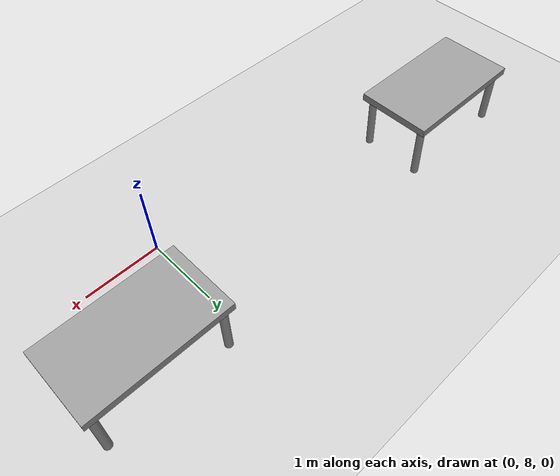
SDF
<sdf version="1.6">
 <world name="default">
  <model name="ground_plane">
   <pose>0 10 0 0 -0 0</pose>
   <static>1</static>
   <link name="link">
    <collision name="collision">
     <geometry><plane><normal>0 0 1</normal><size>100 100</size></plane></geometry>
     <surface><friction><ode><mu>100</mu><mu2>50</mu2></ode></friction></surface>
    </collision>
    <visual name="visual">
     <cast_shadows>0</cast_shadows>
     <geometry><plane><normal>0 0 1</normal><size>100 100</size></plane></geometry>
     <material>
      <script><uri>file://media/materials/scripts/gazebo.material</uri><name>Gazebo/Grey</name></script>
     </material>
    </visual>
   </link>
  </model>
  <model name="table">
   <link name="link_0">
    <pose>0 0 0.34 0 -0 0</pose>
    <inertial>
     <mass>1</mass>
     <inertia>
      <ixx>0.166667</ixx>
      <ixy>0</ixy>
      <ixz>0</ixz>
      <iyy>0.166667</iyy>
      <iyz>0</iyz>
      <izz>0.166667</izz>
     </inertia>
    </inertial>
    <visual name="visual">
     <geometry><box><size>1.75 1 0.1</size></box></geometry>
     <material>
      <lighting>1</lighting>
      <script><uri>file://media/materials/scripts/gazebo.material</uri><name>Gazebo/Grey</name></script>
      <ambient>0.3 0.3 0.3 1</ambient>
      <diffuse>0.7 0.7 0.7 1</diffuse>
      <specular>0.01 0.01 0.01 1</specular>
      <emissive>0 0 0 1</emissive>
      <shader type="vertex"><normal_map>__default__</normal_map></shader>
     </material>
    </visual>
    <collision name="collision">
     <geometry><box><size>1.75 1 0.1</size></box></geometry>
     <surface>
      <friction>
       <ode><mu>1</mu><mu2>1</mu2><fdir1>0 0 0</fdir1><slip1>0</slip1><slip2>0</slip2></ode>
       <torsional>
        <coefficient>1</coefficient>
        <patch_radius>0</patch_radius>
        <surface_radius>0</surface_radius>
        <use_patch_radius>1</use_patch_radius>
        <ode><slip>0</slip></ode>
       </torsional>
      </friction>
      <bounce><restitution_coefficient>0</restitution_coefficient><threshold>1e+06</threshold></bounce>
      <contact>
       <collide_without_contact>0</collide_without_contact>
       <collide_without_contact_bitmask>1</collide_without_contact_bitmask>
       <collide_bitmask>1</collide_bitmask>
       <ode>
        <soft_cfm>0</soft_cfm>
        <soft_erp>0.2</soft_erp>
        <kp>1e+13</kp>
        <kd>1</kd>
        <max_vel>0.01</max_vel>
        <min_depth>0</min_depth>
       </ode>
       <bullet>
        <split_impulse>1</split_impulse>
        <split_impulse_penetration_threshold>-0.01</split_impulse_penetration_threshold>
        <soft_cfm>0</soft_cfm>
        <soft_erp>0.2</soft_erp>
        <kp>1e+13</kp>
        <kd>1</kd>
       </bullet>
      </contact>
     </surface>
    </collision>
   </link>
   <link name="link_1">
    <pose>0.775 0.4 -0.085 0 -0 0</pose>
    <inertial>
     <mass>1</mass>
     <inertia><ixx>0.145833</ixx><ixy>0</ixy><ixz>0</ixz><iyy>0.145833</iyy><iyz>0</iyz><izz>0.125</izz></inertia>
    </inertial>
    <visual name="visual">
     <geometry><cylinder><radius>0.05</radius><length>0.75</length></cylinder></geometry>
     <material>
      <lighting>1</lighting>
      <script><uri>file://media/materials/scripts/gazebo.material</uri><name>Gazebo/Grey</name></script>
      <ambient>0.3 0.3 0.3 1</ambient>
      <diffuse>0.7 0.7 0.7 1</diffuse>
      <specular>0.01 0.01 0.01 1</specular>
      <emissive>0 0 0 1</emissive>
      <shader type="vertex"><normal_map>__default__</normal_map></shader>
     </material>
    </visual>
    <collision name="collision">
     <geometry><cylinder><radius>0.05</radius><length>0.75</length></cylinder></geometry>
     <surface>
      <friction>
       <ode><mu>1</mu><mu2>1</mu2><fdir1>0 0 0</fdir1><slip1>0</slip1><slip2>0</slip2></ode>
       <torsional>
        <coefficient>1</coefficient>
        <patch_radius>0</patch_radius>
        <surface_radius>0</surface_radius>
        <use_patch_radius>1</use_patch_radius>
        <ode><slip>0</slip></ode>
       </torsional>
      </friction>
      <bounce><restitution_coefficient>0</restitution_coefficient><threshold>1e+06</threshold></bounce>
      <contact>
       <collide_without_contact>0</collide_without_contact>
       <collide_without_contact_bitmask>1</collide_without_contact_bitmask>
       <collide_bitmask>1</collide_bitmask>
       <ode>
        <soft_cfm>0</soft_cfm>
        <soft_erp>0.2</soft_erp>
        <kp>1e+13</kp>
        <kd>1</kd>
        <max_vel>0.01</max_vel>
        <min_depth>0</min_depth>
       </ode>
       <bullet>
        <split_impulse>1</split_impulse>
        <split_impulse_penetration_threshold>-0.01</split_impulse_penetration_threshold>
        <soft_cfm>0</soft_cfm>
        <soft_erp>0.2</soft_erp>
        <kp>1e+13</kp>
        <kd>1</kd>
       </bullet>
      </contact>
     </surface>
    </collision>
   </link>
   <link name="link_1_clone">
    <pose>-0.775 -0.4 -0.085 0 -0 0</pose>
    <inertial>
     <mass>1</mass>
     <inertia><ixx>0.145833</ixx><ixy>0</ixy><ixz>0</ixz><iyy>0.145833</iyy><iyz>0</iyz><izz>0.125</izz></inertia>
    </inertial>
    <visual name="visual">
     <geometry><cylinder><radius>0.05</radius><length>0.75</length></cylinder></geometry>
     <material>
      <lighting>1</lighting>
      <script><uri>file://media/materials/scripts/gazebo.material</uri><name>Gazebo/Grey</name></script>
      <ambient>0.3 0.3 0.3 1</ambient>
      <diffuse>0.7 0.7 0.7 1</diffuse>
      <specular>0.01 0.01 0.01 1</specular>
      <emissive>0 0 0 1</emissive>
      <shader type="vertex"><normal_map>__default__</normal_map></shader>
     </material>
    </visual>
    <collision name="collision">
     <geometry><cylinder><radius>0.05</radius><length>0.75</length></cylinder></geometry>
     <surface>
      <friction>
       <ode><mu>1</mu><mu2>1</mu2><fdir1>0 0 0</fdir1><slip1>0</slip1><slip2>0</slip2></ode>
       <torsional>
        <coefficient>1</coefficient>
        <patch_radius>0</patch_radius>
        <surface_radius>0</surface_radius>
        <use_patch_radius>1</use_patch_radius>
        <ode><slip>0</slip></ode>
       </torsional>
      </friction>
      <bounce><restitution_coefficient>0</restitution_coefficient><threshold>1e+06</threshold></bounce>
      <contact>
       <collide_without_contact>0</collide_without_contact>
       <collide_without_contact_bitmask>1</collide_without_contact_bitmask>
       <collide_bitmask>1</collide_bitmask>
       <ode>
        <soft_cfm>0</soft_cfm>
        <soft_erp>0.2</soft_erp>
        <kp>1e+13</kp>
        <kd>1</kd>
        <max_vel>0.01</max_vel>
        <min_depth>0</min_depth>
       </ode>
       <bullet>
        <split_impulse>1</split_impulse>
        <split_impulse_penetration_threshold>-0.01</split_impulse_penetration_threshold>
        <soft_cfm>0</soft_cfm>
        <soft_erp>0.2</soft_erp>
        <kp>1e+13</kp>
        <kd>1</kd>
       </bullet>
      </contact>
     </surface>
    </collision>
   </link>
   <link name="link_1_clone_0">
    <pose>0.775 -0.4 -0.085 0 -0 0</pose>
    <inertial>
     <mass>1</mass>
     <inertia><ixx>0.145833</ixx><ixy>0</ixy><ixz>0</ixz><iyy>0.145833</iyy><iyz>0</iyz><izz>0.125</izz></inertia>
    </inertial>
    <visual name="visual">
     <geometry><cylinder><radius>0.05</radius><length>0.75</length></cylinder></geometry>
     <material>
      <lighting>1</lighting>
      <script><uri>file://media/materials/scripts/gazebo.material</uri><name>Gazebo/Grey</name></script>
      <ambient>0.3 0.3 0.3 1</ambient>
      <diffuse>0.7 0.7 0.7 1</diffuse>
      <specular>0.01 0.01 0.01 1</specular>
      <emissive>0 0 0 1</emissive>
      <shader type="vertex"><normal_map>__default__</normal_map></shader>
     </material>
    </visual>
    <collision name="collision">
     <geometry><cylinder><radius>0.05</radius><length>0.75</length></cylinder></geometry>
     <surface>
      <friction>
       <ode><mu>1</mu><mu2>1</mu2><fdir1>0 0 0</fdir1><slip1>0</slip1><slip2>0</slip2></ode>
       <torsional>
        <coefficient>1</coefficient>
        <patch_radius>0</patch_radius>
        <surface_radius>0</surface_radius>
        <use_patch_radius>1</use_patch_radius>
        <ode><slip>0</slip></ode>
       </torsional>
      </friction>
      <bounce><restitution_coefficient>0</restitution_coefficient><threshold>1e+06</threshold></bounce>
      <contact>
       <collide_without_contact>0</collide_without_contact>
       <collide_without_contact_bitmask>1</collide_without_contact_bitmask>
       <collide_bitmask>1</collide_bitmask>
       <ode>
        <soft_cfm>0</soft_cfm>
        <soft_erp>0.2</soft_erp>
        <kp>1e+13</kp>
        <kd>1</kd>
        <max_vel>0.01</max_vel>
        <min_depth>0</min_depth>
       </ode>
       <bullet>
        <split_impulse>1</split_impulse>
        <split_impulse_penetration_threshold>-0.01</split_impulse_penetration_threshold>
        <soft_cfm>0</soft_cfm>
        <soft_erp>0.2</soft_erp>
        <kp>1e+13</kp>
        <kd>1</kd>
       </bullet>
      </contact>
     </surface>
    </collision>
   </link>
   <link name="link_1_clone_1">
    <pose>-0.775 0.4 -0.085 0 -0 0</pose>
    <inertial>
     <mass>1</mass>
     <inertia><ixx>0.145833</ixx><ixy>0</ixy><ixz>0</ixz><iyy>0.145833</iyy><iyz>0</iyz><izz>0.125</izz></inertia>
    </inertial>
    <visual name="visual">
     <geometry><cylinder><radius>0.05</radius><length>0.75</length></cylinder></geometry>
     <material>
      <lighting>1</lighting>
      <script><uri>file://media/materials/scripts/gazebo.material</uri><name>Gazebo/Grey</name></script>
      <ambient>0.3 0.3 0.3 1</ambient>
      <diffuse>0.7 0.7 0.7 1</diffuse>
      <specular>0.01 0.01 0.01 1</specular>
      <emissive>0 0 0 1</emissive>
      <shader type="vertex"><normal_map>__default__</normal_map></shader>
     </material>
    </visual>
    <collision name="collision">
     <geometry><cylinder><radius>0.05</radius><length>0.75</length></cylinder></geometry>
     <surface>
      <friction>
       <ode><mu>1</mu><mu2>1</mu2><fdir1>0 0 0</fdir1><slip1>0</slip1><slip2>0</slip2></ode>
       <torsional>
        <coefficient>1</coefficient>
        <patch_radius>0</patch_radius>
        <surface_radius>0</surface_radius>
        <use_patch_radius>1</use_patch_radius>
        <ode><slip>0</slip></ode>
       </torsional>
      </friction>
      <bounce><restitution_coefficient>0</restitution_coefficient><threshold>1e+06</threshold></bounce>
      <contact>
       <collide_without_contact>0</collide_without_contact>
       <collide_without_contact_bitmask>1</collide_without_contact_bitmask>
       <collide_bitmask>1</collide_bitmask>
       <ode>
        <soft_cfm>0</soft_cfm>
        <soft_erp>0.2</soft_erp>
        <kp>1e+13</kp>
        <kd>1</kd>
        <max_vel>0.01</max_vel>
        <min_depth>0</min_depth>
       </ode>
       <bullet>
        <split_impulse>1</split_impulse>
        <split_impulse_penetration_threshold>-0.01</split_impulse_penetration_threshold>
        <soft_cfm>0</soft_cfm>
        <soft_erp>0.2</soft_erp>
        <kp>1e+13</kp>
        <kd>1</kd>
       </bullet>
      </contact>
     </surface>
    </collision>
   </link>
   <joint name="link_0_JOINT_0" type="fixed">
    <parent>link_0</parent>
    <child>link_1</child>
    <physics>
     <ode><limit><cfm>0</cfm><erp>0.2</erp></limit><suspension><cfm>0</cfm><erp>0.2</erp></suspension></ode>
    </physics>
   </joint>
   <joint name="link_0_JOINT_1" type="fixed">
    <parent>link_0</parent>
    <child>link_1_clone_1</child>
    <physics>
     <ode><limit><cfm>0</cfm><erp>0.2</erp></limit><suspension><cfm>0</cfm><erp>0.2</erp></suspension></ode>
    </physics>
   </joint>
   <joint name="link_0_JOINT_2" type="fixed">
    <parent>link_0</parent>
    <child>link_1_clone</child>
    <physics>
     <ode><limit><cfm>0</cfm><erp>0.2</erp></limit><suspension><cfm>0</cfm><erp>0.2</erp></suspension></ode>
    </physics>
   </joint>
   <joint name="link_0_JOINT_3" type="fixed">
    <parent>link_0</parent>
    <child>link_1_clone_0</child>
    <physics>
     <ode><limit><cfm>0</cfm><erp>0.2</erp></limit><suspension><cfm>0</cfm><erp>0.2</erp></suspension></ode>
    </physics>
   </joint>
   <static>0</static>
   <pose>0.992161 9.20094 0.459999 -2e-06 -0 -0.00216</pose>
  </model>
  <model name="table_0">
   <link name="link_0">
    <pose>0 0 0.34 0 -0 0</pose>
    <inertial>
     <mass>1</mass>
     <inertia>
      <ixx>0.166667</ixx>
      <ixy>0</ixy>
      <ixz>0</ixz>
      <iyy>0.166667</iyy>
      <iyz>0</iyz>
      <izz>0.166667</izz>
     </inertia>
    </inertial>
    <visual name="visual">
     <geometry><box><size>1.75 1 0.1</size></box></geometry>
     <material>
      <lighting>1</lighting>
      <script><uri>file://media/materials/scripts/gazebo.material</uri><name>Gazebo/Grey</name></script>
      <ambient>0.3 0.3 0.3 1</ambient>
      <diffuse>0.7 0.7 0.7 1</diffuse>
      <specular>0.01 0.01 0.01 1</specular>
      <emissive>0 0 0 1</emissive>
      <shader type="vertex"><normal_map>__default__</normal_map></shader>
     </material>
    </visual>
    <collision name="collision">
     <geometry><box><size>1.75 1 0.1</size></box></geometry>
     <surface>
      <friction>
       <ode><mu>1</mu><mu2>1</mu2><fdir1>0 0 0</fdir1><slip1>0</slip1><slip2>0</slip2></ode>
       <torsional>
        <coefficient>1</coefficient>
        <patch_radius>0</patch_radius>
        <surface_radius>0</surface_radius>
        <use_patch_radius>1</use_patch_radius>
        <ode><slip>0</slip></ode>
       </torsional>
      </friction>
      <bounce><restitution_coefficient>0</restitution_coefficient><threshold>1e+06</threshold></bounce>
      <contact>
       <collide_without_contact>0</collide_without_contact>
       <collide_without_contact_bitmask>1</collide_without_contact_bitmask>
       <collide_bitmask>1</collide_bitmask>
       <ode>
        <soft_cfm>0</soft_cfm>
        <soft_erp>0.2</soft_erp>
        <kp>1e+13</kp>
        <kd>1</kd>
        <max_vel>0.01</max_vel>
        <min_depth>0</min_depth>
       </ode>
       <bullet>
        <split_impulse>1</split_impulse>
        <split_impulse_penetration_threshold>-0.01</split_impulse_penetration_threshold>
        <soft_cfm>0</soft_cfm>
        <soft_erp>0.2</soft_erp>
        <kp>1e+13</kp>
        <kd>1</kd>
       </bullet>
      </contact>
     </surface>
    </collision>
   </link>
   <link name="link_1">
    <pose>0.775 0.4 -0.085 0 -0 0</pose>
    <inertial>
     <mass>1</mass>
     <inertia><ixx>0.145833</ixx><ixy>0</ixy><ixz>0</ixz><iyy>0.145833</iyy><iyz>0</iyz><izz>0.125</izz></inertia>
    </inertial>
    <visual name="visual">
     <geometry><cylinder><radius>0.05</radius><length>0.75</length></cylinder></geometry>
     <material>
      <lighting>1</lighting>
      <script><uri>file://media/materials/scripts/gazebo.material</uri><name>Gazebo/Grey</name></script>
      <ambient>0.3 0.3 0.3 1</ambient>
      <diffuse>0.7 0.7 0.7 1</diffuse>
      <specular>0.01 0.01 0.01 1</specular>
      <emissive>0 0 0 1</emissive>
      <shader type="vertex"><normal_map>__default__</normal_map></shader>
     </material>
    </visual>
    <collision name="collision">
     <geometry><cylinder><radius>0.05</radius><length>0.75</length></cylinder></geometry>
     <surface>
      <friction>
       <ode><mu>1</mu><mu2>1</mu2><fdir1>0 0 0</fdir1><slip1>0</slip1><slip2>0</slip2></ode>
       <torsional>
        <coefficient>1</coefficient>
        <patch_radius>0</patch_radius>
        <surface_radius>0</surface_radius>
        <use_patch_radius>1</use_patch_radius>
        <ode><slip>0</slip></ode>
       </torsional>
      </friction>
      <bounce><restitution_coefficient>0</restitution_coefficient><threshold>1e+06</threshold></bounce>
      <contact>
       <collide_without_contact>0</collide_without_contact>
       <collide_without_contact_bitmask>1</collide_without_contact_bitmask>
       <collide_bitmask>1</collide_bitmask>
       <ode>
        <soft_cfm>0</soft_cfm>
        <soft_erp>0.2</soft_erp>
        <kp>1e+13</kp>
        <kd>1</kd>
        <max_vel>0.01</max_vel>
        <min_depth>0</min_depth>
       </ode>
       <bullet>
        <split_impulse>1</split_impulse>
        <split_impulse_penetration_threshold>-0.01</split_impulse_penetration_threshold>
        <soft_cfm>0</soft_cfm>
        <soft_erp>0.2</soft_erp>
        <kp>1e+13</kp>
        <kd>1</kd>
       </bullet>
      </contact>
     </surface>
    </collision>
   </link>
   <link name="link_1_clone">
    <pose>-0.775 -0.4 -0.085 0 -0 0</pose>
    <inertial>
     <mass>1</mass>
     <inertia><ixx>0.145833</ixx><ixy>0</ixy><ixz>0</ixz><iyy>0.145833</iyy><iyz>0</iyz><izz>0.125</izz></inertia>
    </inertial>
    <visual name="visual">
     <geometry><cylinder><radius>0.05</radius><length>0.75</length></cylinder></geometry>
     <material>
      <lighting>1</lighting>
      <script><uri>file://media/materials/scripts/gazebo.material</uri><name>Gazebo/Grey</name></script>
      <ambient>0.3 0.3 0.3 1</ambient>
      <diffuse>0.7 0.7 0.7 1</diffuse>
      <specular>0.01 0.01 0.01 1</specular>
      <emissive>0 0 0 1</emissive>
      <shader type="vertex"><normal_map>__default__</normal_map></shader>
     </material>
    </visual>
    <collision name="collision">
     <geometry><cylinder><radius>0.05</radius><length>0.75</length></cylinder></geometry>
     <surface>
      <friction>
       <ode><mu>1</mu><mu2>1</mu2><fdir1>0 0 0</fdir1><slip1>0</slip1><slip2>0</slip2></ode>
       <torsional>
        <coefficient>1</coefficient>
        <patch_radius>0</patch_radius>
        <surface_radius>0</surface_radius>
        <use_patch_radius>1</use_patch_radius>
        <ode><slip>0</slip></ode>
       </torsional>
      </friction>
      <bounce><restitution_coefficient>0</restitution_coefficient><threshold>1e+06</threshold></bounce>
      <contact>
       <collide_without_contact>0</collide_without_contact>
       <collide_without_contact_bitmask>1</collide_without_contact_bitmask>
       <collide_bitmask>1</collide_bitmask>
       <ode>
        <soft_cfm>0</soft_cfm>
        <soft_erp>0.2</soft_erp>
        <kp>1e+13</kp>
        <kd>1</kd>
        <max_vel>0.01</max_vel>
        <min_depth>0</min_depth>
       </ode>
       <bullet>
        <split_impulse>1</split_impulse>
        <split_impulse_penetration_threshold>-0.01</split_impulse_penetration_threshold>
        <soft_cfm>0</soft_cfm>
        <soft_erp>0.2</soft_erp>
        <kp>1e+13</kp>
        <kd>1</kd>
       </bullet>
      </contact>
     </surface>
    </collision>
   </link>
   <link name="link_1_clone_0">
    <pose>0.775 -0.4 -0.085 0 -0 0</pose>
    <inertial>
     <mass>1</mass>
     <inertia><ixx>0.145833</ixx><ixy>0</ixy><ixz>0</ixz><iyy>0.145833</iyy><iyz>0</iyz><izz>0.125</izz></inertia>
    </inertial>
    <visual name="visual">
     <geometry><cylinder><radius>0.05</radius><length>0.75</length></cylinder></geometry>
     <material>
      <lighting>1</lighting>
      <script><uri>file://media/materials/scripts/gazebo.material</uri><name>Gazebo/Grey</name></script>
      <ambient>0.3 0.3 0.3 1</ambient>
      <diffuse>0.7 0.7 0.7 1</diffuse>
      <specular>0.01 0.01 0.01 1</specular>
      <emissive>0 0 0 1</emissive>
      <shader type="vertex"><normal_map>__default__</normal_map></shader>
     </material>
    </visual>
    <collision name="collision">
     <geometry><cylinder><radius>0.05</radius><length>0.75</length></cylinder></geometry>
     <surface>
      <friction>
       <ode><mu>1</mu><mu2>1</mu2><fdir1>0 0 0</fdir1><slip1>0</slip1><slip2>0</slip2></ode>
       <torsional>
        <coefficient>1</coefficient>
        <patch_radius>0</patch_radius>
        <surface_radius>0</surface_radius>
        <use_patch_radius>1</use_patch_radius>
        <ode><slip>0</slip></ode>
       </torsional>
      </friction>
      <bounce><restitution_coefficient>0</restitution_coefficient><threshold>1e+06</threshold></bounce>
      <contact>
       <collide_without_contact>0</collide_without_contact>
       <collide_without_contact_bitmask>1</collide_without_contact_bitmask>
       <collide_bitmask>1</collide_bitmask>
       <ode>
        <soft_cfm>0</soft_cfm>
        <soft_erp>0.2</soft_erp>
        <kp>1e+13</kp>
        <kd>1</kd>
        <max_vel>0.01</max_vel>
        <min_depth>0</min_depth>
       </ode>
       <bullet>
        <split_impulse>1</split_impulse>
        <split_impulse_penetration_threshold>-0.01</split_impulse_penetration_threshold>
        <soft_cfm>0</soft_cfm>
        <soft_erp>0.2</soft_erp>
        <kp>1e+13</kp>
        <kd>1</kd>
       </bullet>
      </contact>
     </surface>
    </collision>
   </link>
   <link name="link_1_clone_1">
    <pose>-0.775 0.4 -0.085 0 -0 0</pose>
    <inertial>
     <mass>1</mass>
     <inertia><ixx>0.145833</ixx><ixy>0</ixy><ixz>0</ixz><iyy>0.145833</iyy><iyz>0</iyz><izz>0.125</izz></inertia>
    </inertial>
    <visual name="visual">
     <geometry><cylinder><radius>0.05</radius><length>0.75</length></cylinder></geometry>
     <material>
      <lighting>1</lighting>
      <script><uri>file://media/materials/scripts/gazebo.material</uri><name>Gazebo/Grey</name></script>
      <ambient>0.3 0.3 0.3 1</ambient>
      <diffuse>0.7 0.7 0.7 1</diffuse>
      <specular>0.01 0.01 0.01 1</specular>
      <emissive>0 0 0 1</emissive>
      <shader type="vertex"><normal_map>__default__</normal_map></shader>
     </material>
    </visual>
    <collision name="collision">
     <geometry><cylinder><radius>0.05</radius><length>0.75</length></cylinder></geometry>
     <surface>
      <friction>
       <ode><mu>1</mu><mu2>1</mu2><fdir1>0 0 0</fdir1><slip1>0</slip1><slip2>0</slip2></ode>
       <torsional>
        <coefficient>1</coefficient>
        <patch_radius>0</patch_radius>
        <surface_radius>0</surface_radius>
        <use_patch_radius>1</use_patch_radius>
        <ode><slip>0</slip></ode>
       </torsional>
      </friction>
      <bounce><restitution_coefficient>0</restitution_coefficient><threshold>1e+06</threshold></bounce>
      <contact>
       <collide_without_contact>0</collide_without_contact>
       <collide_without_contact_bitmask>1</collide_without_contact_bitmask>
       <collide_bitmask>1</collide_bitmask>
       <ode>
        <soft_cfm>0</soft_cfm>
        <soft_erp>0.2</soft_erp>
        <kp>1e+13</kp>
        <kd>1</kd>
        <max_vel>0.01</max_vel>
        <min_depth>0</min_depth>
       </ode>
       <bullet>
        <split_impulse>1</split_impulse>
        <split_impulse_penetration_threshold>-0.01</split_impulse_penetration_threshold>
        <soft_cfm>0</soft_cfm>
        <soft_erp>0.2</soft_erp>
        <kp>1e+13</kp>
        <kd>1</kd>
       </bullet>
      </contact>
     </surface>
    </collision>
   </link>
   <joint name="link_0_JOINT_0" type="fixed">
    <parent>link_0</parent>
    <child>link_1</child>
    <physics>
     <ode><limit><cfm>0</cfm><erp>0.2</erp></limit><suspension><cfm>0</cfm><erp>0.2</erp></suspension></ode>
    </physics>
   </joint>
   <joint name="link_0_JOINT_1" type="fixed">
    <parent>link_0</parent>
    <child>link_1_clone_1</child>
    <physics>
     <ode><limit><cfm>0</cfm><erp>0.2</erp></limit><suspension><cfm>0</cfm><erp>0.2</erp></suspension></ode>
    </physics>
   </joint>
   <joint name="link_0_JOINT_2" type="fixed">
    <parent>link_0</parent>
    <child>link_1_clone</child>
    <physics>
     <ode><limit><cfm>0</cfm><erp>0.2</erp></limit><suspension><cfm>0</cfm><erp>0.2</erp></suspension></ode>
    </physics>
   </joint>
   <joint name="link_0_JOINT_3" type="fixed">
    <parent>link_0</parent>
    <child>link_1_clone_0</child>
    <physics>
     <ode><limit><cfm>0</cfm><erp>0.2</erp></limit><suspension><cfm>0</cfm><erp>0.2</erp></suspension></ode>
    </physics>
   </joint>
   <static>0</static>
   <pose>-4 9 0.459999 -2e-06 -0 -0.00204</pose>
  </model>
 </world>
</sdf>
